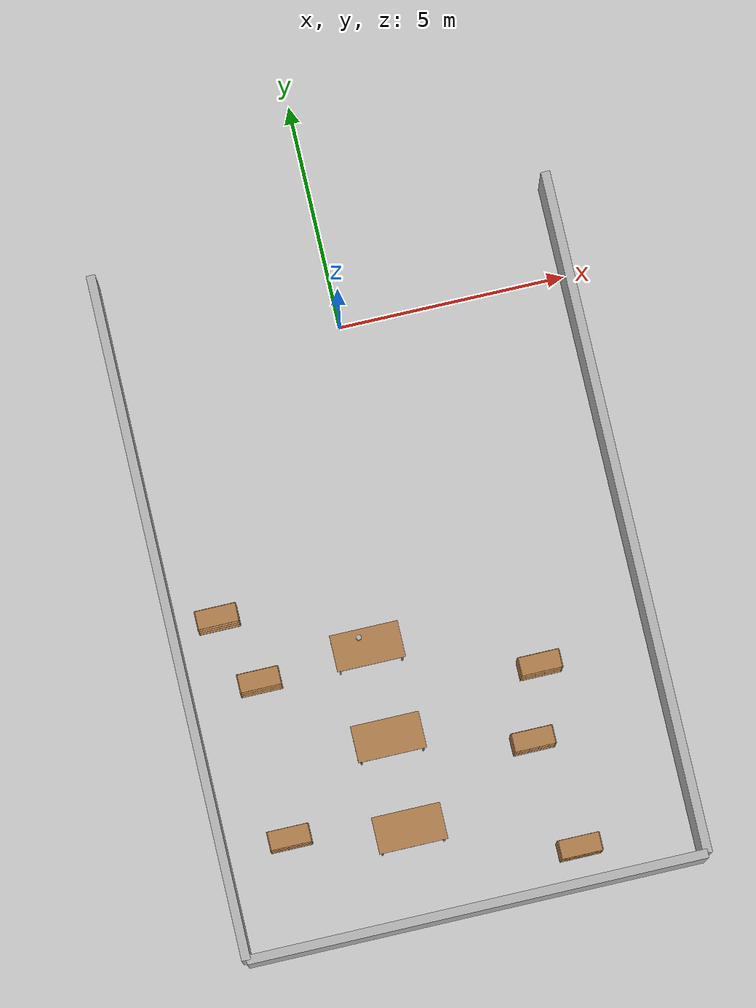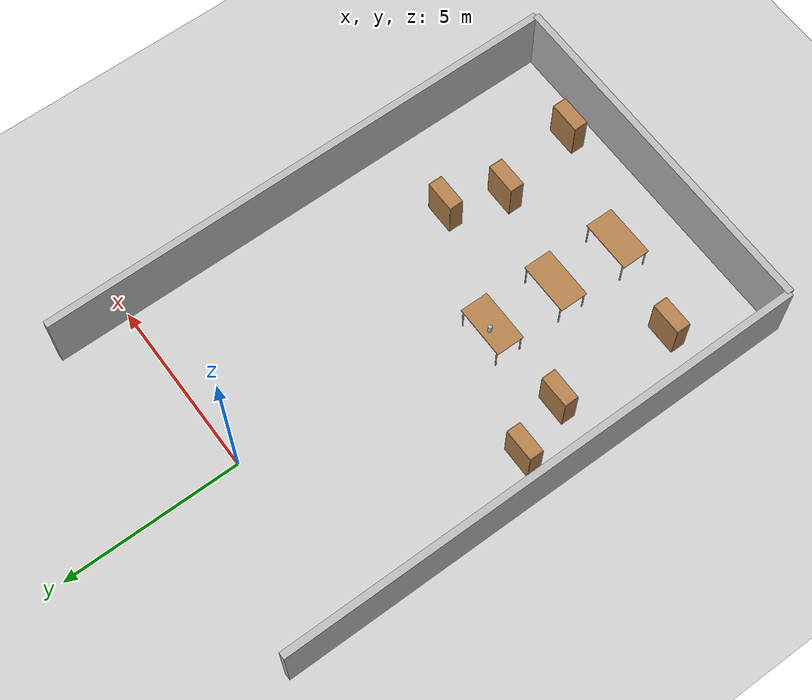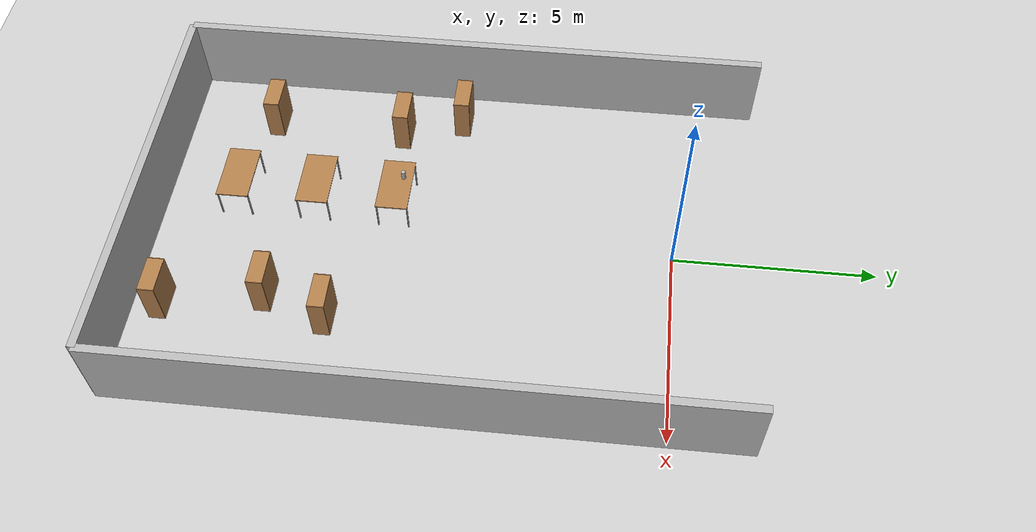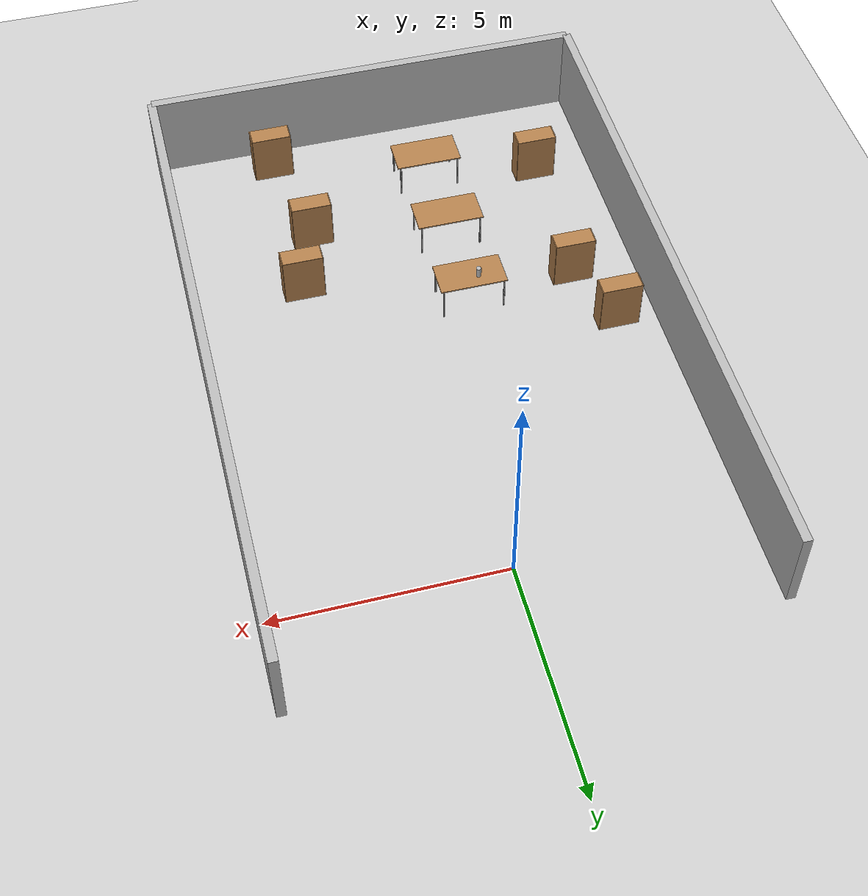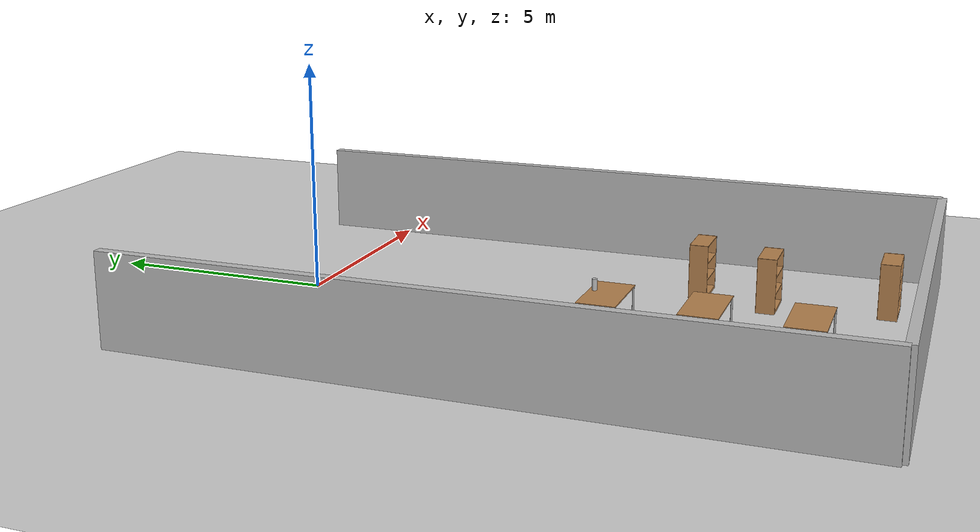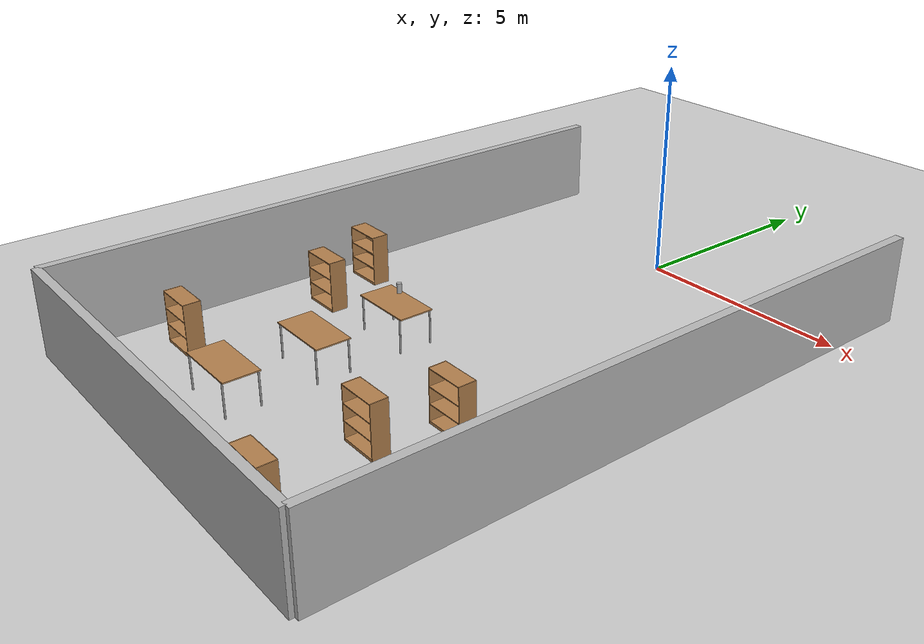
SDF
<sdf version="1.4">
 <world name="default">
  <model name="ground_plane">
   <static>1</static>
   <link name="link">
    <collision name="collision">
     <geometry>
      <plane><normal>0.000000 0.000000 1.000000</normal><size>100.000000 100.000000</size></plane>
     </geometry>
     <surface><friction><ode><mu>100.000000</mu><mu2>50.000000</mu2></ode></friction></surface>
    </collision>
    <visual name="visual">
     <cast_shadows>0</cast_shadows>
     <geometry>
      <plane><normal>0.000000 0.000000 1.000000</normal><size>100.000000 100.000000</size></plane>
     </geometry>
     <material>
      <script><uri>file://media/materials/scripts/gazebo.material</uri><name>Gazebo/Grey</name></script>
     </material>
    </visual>
    <velocity_decay><linear>0.000000</linear><angular>0.000000</angular></velocity_decay>
   </link>
  </model>
  <model name="wall_1_model">
   <pose>0.0 -13.0 1.0 0.0 0.0 0.0</pose>
   <static>1</static>
   <link name="wall_1_body">
    <inertial>
     <mass>1.000000</mass>
     <inertia>
      <ixx>1.000000</ixx>
      <ixy>0.000000</ixy>
      <ixz>0.000000</ixz>
      <iyy>1.000000</iyy>
      <iyz>0.000000</iyz>
      <izz>1.000000</izz>
     </inertia>
    </inertial>
    <collision name="collision">
     <geometry><box><size>10.000000 0.200000 2.000000</size></box></geometry>
    </collision>
    <visual name="visual"><geometry><box><size>10.000000 0.200000 2.000000</size></box></geometry></visual>
    <velocity_decay><linear>0.000000</linear><angular>0.000000</angular></velocity_decay>
   </link>
  </model>
  <model name="wall_3_model">
   <pose>-5.0 -5.5 1.0 0.0 0.0 0.0</pose>
   <static>1</static>
   <link name="wall_3_body">
    <inertial>
     <mass>1.000000</mass>
     <inertia>
      <ixx>1.000000</ixx>
      <ixy>0.000000</ixy>
      <ixz>0.000000</ixz>
      <iyy>1.000000</iyy>
      <iyz>0.000000</iyz>
      <izz>1.000000</izz>
     </inertia>
    </inertial>
    <collision name="collision">
     <geometry><box><size>0.200000 15.000000 2.000000</size></box></geometry>
    </collision>
    <visual name="visual"><geometry><box><size>0.200000 15.000000 2.000000</size></box></geometry></visual>
    <velocity_decay><linear>0.000000</linear><angular>0.000000</angular></velocity_decay>
   </link>
  </model>
  <model name="wall_4_model">
   <pose>5.0 -5.5 1.0 0.0 0.0 0.0</pose>
   <static>1</static>
   <link name="wall_4_body">
    <inertial>
     <mass>1.000000</mass>
     <inertia>
      <ixx>1.000000</ixx>
      <ixy>0.000000</ixy>
      <ixz>0.000000</ixz>
      <iyy>1.000000</iyy>
      <iyz>0.000000</iyz>
      <izz>1.000000</izz>
     </inertia>
    </inertial>
    <collision name="collision">
     <geometry><box><size>0.200000 15.000000 2.000000</size></box></geometry>
    </collision>
    <visual name="visual"><geometry><box><size>0.200000 15.000000 2.000000</size></box></geometry></visual>
    <velocity_decay><linear>0.000000</linear><angular>0.000000</angular></velocity_decay>
   </link>
  </model>
  <model name="bookshelf">
   <static>0</static>
   <link name="link">
    <inertial><mass>1.000000</mass></inertial>
    <collision name="back">
     <pose>0.000000 0.005000 0.600000 0.000000 0.000000 0.000000</pose>
     <geometry><box><size>0.900000 0.010000 1.200000</size></box></geometry>
    </collision>
    <visual name="visual1">
     <pose>0.000000 0.005000 0.600000 0.000000 0.000000 0.000000</pose>
     <geometry><box><size>0.900000 0.010000 1.200000</size></box></geometry>
     <material>
      <script><uri>file://media/materials/scripts/gazebo.material</uri><name>Gazebo/Wood</name></script>
     </material>
    </visual>
    <collision name="left_side">
     <pose>0.450000 -0.195000 0.600000 0.000000 0.000000 0.000000</pose>
     <geometry><box><size>0.020000 0.400000 1.200000</size></box></geometry>
    </collision>
    <visual name="visual2">
     <pose>0.450000 -0.195000 0.600000 0.000000 0.000000 0.000000</pose>
     <geometry><box><size>0.020000 0.400000 1.200000</size></box></geometry>
     <material>
      <script><uri>file://media/materials/scripts/gazebo.material</uri><name>Gazebo/Wood</name></script>
     </material>
    </visual>
    <collision name="right_side">
     <pose>-0.450000 -0.195000 0.600000 0.000000 0.000000 0.000000</pose>
     <geometry><box><size>0.020000 0.400000 1.200000</size></box></geometry>
    </collision>
    <visual name="visual3">
     <pose>-0.450000 -0.195000 0.600000 0.000000 0.000000 0.000000</pose>
     <geometry><box><size>0.020000 0.400000 1.200000</size></box></geometry>
     <material>
      <script><uri>file://media/materials/scripts/gazebo.material</uri><name>Gazebo/Wood</name></script>
     </material>
    </visual>
    <collision name="bottom">
     <pose>0.000000 -0.195000 0.030000 0.000000 0.000000 0.000000</pose>
     <geometry><box><size>0.880000 0.400000 0.060000</size></box></geometry>
    </collision>
    <visual name="visual4">
     <pose>0.000000 -0.195000 0.030000 0.000000 0.000000 0.000000</pose>
     <geometry><box><size>0.880000 0.400000 0.060000</size></box></geometry>
     <material>
      <script><uri>file://media/materials/scripts/gazebo.material</uri><name>Gazebo/Wood</name></script>
     </material>
    </visual>
    <collision name="top">
     <pose>0.000000 -0.195000 1.190000 0.000000 0.000000 0.000000</pose>
     <geometry><box><size>0.880000 0.400000 0.020000</size></box></geometry>
    </collision>
    <visual name="visual5">
     <pose>0.000000 -0.195000 1.190000 0.000000 0.000000 0.000000</pose>
     <geometry><box><size>0.880000 0.400000 0.020000</size></box></geometry>
     <material>
      <script><uri>file://media/materials/scripts/gazebo.material</uri><name>Gazebo/Wood</name></script>
     </material>
    </visual>
    <collision name="low_shelf">
     <pose>0.000000 -0.195000 0.430000 0.000000 0.000000 0.000000</pose>
     <geometry><box><size>0.880000 0.400000 0.020000</size></box></geometry>
    </collision>
    <visual name="visual6">
     <pose>0.000000 -0.195000 0.430000 0.000000 0.000000 0.000000</pose>
     <geometry><box><size>0.880000 0.400000 0.020000</size></box></geometry>
     <material>
      <script><uri>file://media/materials/scripts/gazebo.material</uri><name>Gazebo/Wood</name></script>
     </material>
    </visual>
    <collision name="high_shelf">
     <pose>0.000000 -0.195000 0.800000 0.000000 0.000000 0.000000</pose>
     <geometry><box><size>0.880000 0.400000 0.020000</size></box></geometry>
    </collision>
    <visual name="visual7">
     <pose>0.000000 -0.195000 0.800000 0.000000 0.000000 0.000000</pose>
     <geometry><box><size>0.880000 0.400000 0.020000</size></box></geometry>
     <material>
      <script><uri>file://media/materials/scripts/gazebo.material</uri><name>Gazebo/Wood</name></script>
     </material>
    </visual>
    <velocity_decay><linear>0.000000</linear><angular>0.000000</angular></velocity_decay>
   </link>
   <pose>2.0 -9.55401 0.0 0.0 0.0 0.0</pose>
  </model>
  <model name="table">
   <static>0</static>
   <link name="link">
    <collision name="surface">
     <pose>0.000000 0.000000 0.900000 0.000000 0.000000 0.000000</pose>
     <geometry><box><size>1.500000 0.800000 0.030000</size></box></geometry>
    </collision>
    <visual name="visual1">
     <pose>0.000000 0.000000 0.900000 0.000000 0.000000 0.000000</pose>
     <geometry><box><size>1.500000 0.800000 0.030000</size></box></geometry>
     <material>
      <script><uri>file://media/materials/scripts/gazebo.material</uri><name>Gazebo/Wood</name></script>
     </material>
    </visual>
    <collision name="front_left_leg">
     <pose>0.680000 0.380000 0.500000 0.000000 0.000000 0.000000</pose>
     <geometry><cylinder><radius>0.020000</radius><length>0.800000</length></cylinder></geometry>
    </collision>
    <visual name="front_left_leg">
     <pose>0.680000 0.380000 0.500000 0.000000 0.000000 0.000000</pose>
     <geometry><cylinder><radius>0.020000</radius><length>0.800000</length></cylinder></geometry>
     <material>
      <script><uri>file://media/materials/scripts/gazebo.material</uri><name>Gazebo/Grey</name></script>
     </material>
    </visual>
    <collision name="front_right_leg">
     <pose>0.680000 -0.380000 0.500000 0.000000 0.000000 0.000000</pose>
     <geometry><cylinder><radius>0.020000</radius><length>0.800000</length></cylinder></geometry>
    </collision>
    <visual name="front_right_leg">
     <pose>0.680000 -0.380000 0.500000 0.000000 0.000000 0.000000</pose>
     <geometry><cylinder><radius>0.020000</radius><length>0.800000</length></cylinder></geometry>
     <material>
      <script><uri>file://media/materials/scripts/gazebo.material</uri><name>Gazebo/Grey</name></script>
     </material>
    </visual>
    <collision name="back_right_leg">
     <pose>-0.680000 -0.380000 0.500000 0.000000 0.000000 0.000000</pose>
     <geometry><cylinder><radius>0.020000</radius><length>0.800000</length></cylinder></geometry>
    </collision>
    <visual name="back_right_leg">
     <pose>-0.680000 -0.380000 0.500000 0.000000 0.000000 0.000000</pose>
     <geometry><cylinder><radius>0.020000</radius><length>0.800000</length></cylinder></geometry>
     <material>
      <script><uri>file://media/materials/scripts/gazebo.material</uri><name>Gazebo/Grey</name></script>
     </material>
    </visual>
    <collision name="back_left_leg">
     <pose>-0.680000 0.380000 0.500000 0.000000 0.000000 0.000000</pose>
     <geometry><cylinder><radius>0.020000</radius><length>0.800000</length></cylinder></geometry>
    </collision>
    <visual name="back_left_leg">
     <pose>-0.680000 0.380000 0.500000 0.000000 0.000000 0.000000</pose>
     <geometry><cylinder><radius>0.020000</radius><length>0.800000</length></cylinder></geometry>
     <material>
      <script><uri>file://media/materials/scripts/gazebo.material</uri><name>Gazebo/Grey</name></script>
     </material>
    </visual>
    <velocity_decay><linear>0.000000</linear><angular>0.000000</angular></velocity_decay>
   </link>
   <pose>-1.0 -9.0 0.0 0.0 0.0 0.0</pose>
  </model>
  <model name="bookshelf_2">
   <static>0</static>
   <link name="link">
    <inertial><mass>1.000000</mass></inertial>
    <collision name="back">
     <pose>0.000000 0.005000 0.600000 0.000000 0.000000 0.000000</pose>
     <geometry><box><size>0.900000 0.010000 1.200000</size></box></geometry>
    </collision>
    <visual name="visual1">
     <pose>0.000000 0.005000 0.600000 0.000000 0.000000 0.000000</pose>
     <geometry><box><size>0.900000 0.010000 1.200000</size></box></geometry>
     <material>
      <script><uri>file://media/materials/scripts/gazebo.material</uri><name>Gazebo/Wood</name></script>
     </material>
    </visual>
    <collision name="left_side">
     <pose>0.450000 -0.195000 0.600000 0.000000 0.000000 0.000000</pose>
     <geometry><box><size>0.020000 0.400000 1.200000</size></box></geometry>
    </collision>
    <visual name="visual2">
     <pose>0.450000 -0.195000 0.600000 0.000000 0.000000 0.000000</pose>
     <geometry><box><size>0.020000 0.400000 1.200000</size></box></geometry>
     <material>
      <script><uri>file://media/materials/scripts/gazebo.material</uri><name>Gazebo/Wood</name></script>
     </material>
    </visual>
    <collision name="right_side">
     <pose>-0.450000 -0.195000 0.600000 0.000000 0.000000 0.000000</pose>
     <geometry><box><size>0.020000 0.400000 1.200000</size></box></geometry>
    </collision>
    <visual name="visual3">
     <pose>-0.450000 -0.195000 0.600000 0.000000 0.000000 0.000000</pose>
     <geometry><box><size>0.020000 0.400000 1.200000</size></box></geometry>
     <material>
      <script><uri>file://media/materials/scripts/gazebo.material</uri><name>Gazebo/Wood</name></script>
     </material>
    </visual>
    <collision name="bottom">
     <pose>0.000000 -0.195000 0.030000 0.000000 0.000000 0.000000</pose>
     <geometry><box><size>0.880000 0.400000 0.060000</size></box></geometry>
    </collision>
    <visual name="visual4">
     <pose>0.000000 -0.195000 0.030000 0.000000 0.000000 0.000000</pose>
     <geometry><box><size>0.880000 0.400000 0.060000</size></box></geometry>
     <material>
      <script><uri>file://media/materials/scripts/gazebo.material</uri><name>Gazebo/Wood</name></script>
     </material>
    </visual>
    <collision name="top">
     <pose>0.000000 -0.195000 1.190000 0.000000 0.000000 0.000000</pose>
     <geometry><box><size>0.880000 0.400000 0.020000</size></box></geometry>
    </collision>
    <visual name="visual5">
     <pose>0.000000 -0.195000 1.190000 0.000000 0.000000 0.000000</pose>
     <geometry><box><size>0.880000 0.400000 0.020000</size></box></geometry>
     <material>
      <script><uri>file://media/materials/scripts/gazebo.material</uri><name>Gazebo/Wood</name></script>
     </material>
    </visual>
    <collision name="low_shelf">
     <pose>0.000000 -0.195000 0.430000 0.000000 0.000000 0.000000</pose>
     <geometry><box><size>0.880000 0.400000 0.020000</size></box></geometry>
    </collision>
    <visual name="visual6">
     <pose>0.000000 -0.195000 0.430000 0.000000 0.000000 0.000000</pose>
     <geometry><box><size>0.880000 0.400000 0.020000</size></box></geometry>
     <material>
      <script><uri>file://media/materials/scripts/gazebo.material</uri><name>Gazebo/Wood</name></script>
     </material>
    </visual>
    <collision name="high_shelf">
     <pose>0.000000 -0.195000 0.800000 0.000000 0.000000 0.000000</pose>
     <geometry><box><size>0.880000 0.400000 0.020000</size></box></geometry>
    </collision>
    <visual name="visual7">
     <pose>0.000000 -0.195000 0.800000 0.000000 0.000000 0.000000</pose>
     <geometry><box><size>0.880000 0.400000 0.020000</size></box></geometry>
     <material>
      <script><uri>file://media/materials/scripts/gazebo.material</uri><name>Gazebo/Wood</name></script>
     </material>
    </visual>
    <velocity_decay><linear>0.000000</linear><angular>0.000000</angular></velocity_decay>
   </link>
   <pose>-3.41849 -7.0 0.0 0.0 0.0 0.0</pose>
  </model>
  <model name="table_0">
   <static>0</static>
   <link name="link">
    <collision name="surface">
     <pose>0.000000 0.000000 0.900000 0.000000 0.000000 0.000000</pose>
     <geometry><box><size>1.500000 0.800000 0.030000</size></box></geometry>
    </collision>
    <visual name="visual1">
     <pose>0.000000 0.000000 0.900000 0.000000 0.000000 0.000000</pose>
     <geometry><box><size>1.500000 0.800000 0.030000</size></box></geometry>
     <material>
      <script><uri>file://media/materials/scripts/gazebo.material</uri><name>Gazebo/Wood</name></script>
     </material>
    </visual>
    <collision name="front_left_leg">
     <pose>0.680000 0.380000 0.500000 0.000000 0.000000 0.000000</pose>
     <geometry><cylinder><radius>0.020000</radius><length>0.800000</length></cylinder></geometry>
    </collision>
    <visual name="front_left_leg">
     <pose>0.680000 0.380000 0.500000 0.000000 0.000000 0.000000</pose>
     <geometry><cylinder><radius>0.020000</radius><length>0.800000</length></cylinder></geometry>
     <material>
      <script><uri>file://media/materials/scripts/gazebo.material</uri><name>Gazebo/Grey</name></script>
     </material>
    </visual>
    <collision name="front_right_leg">
     <pose>0.680000 -0.380000 0.500000 0.000000 0.000000 0.000000</pose>
     <geometry><cylinder><radius>0.020000</radius><length>0.800000</length></cylinder></geometry>
    </collision>
    <visual name="front_right_leg">
     <pose>0.680000 -0.380000 0.500000 0.000000 0.000000 0.000000</pose>
     <geometry><cylinder><radius>0.020000</radius><length>0.800000</length></cylinder></geometry>
     <material>
      <script><uri>file://media/materials/scripts/gazebo.material</uri><name>Gazebo/Grey</name></script>
     </material>
    </visual>
    <collision name="back_right_leg">
     <pose>-0.680000 -0.380000 0.500000 0.000000 0.000000 0.000000</pose>
     <geometry><cylinder><radius>0.020000</radius><length>0.800000</length></cylinder></geometry>
    </collision>
    <visual name="back_right_leg">
     <pose>-0.680000 -0.380000 0.500000 0.000000 0.000000 0.000000</pose>
     <geometry><cylinder><radius>0.020000</radius><length>0.800000</length></cylinder></geometry>
     <material>
      <script><uri>file://media/materials/scripts/gazebo.material</uri><name>Gazebo/Grey</name></script>
     </material>
    </visual>
    <collision name="back_left_leg">
     <pose>-0.680000 0.380000 0.500000 0.000000 0.000000 0.000000</pose>
     <geometry><cylinder><radius>0.020000</radius><length>0.800000</length></cylinder></geometry>
    </collision>
    <visual name="back_left_leg">
     <pose>-0.680000 0.380000 0.500000 0.000000 0.000000 0.000000</pose>
     <geometry><cylinder><radius>0.020000</radius><length>0.800000</length></cylinder></geometry>
     <material>
      <script><uri>file://media/materials/scripts/gazebo.material</uri><name>Gazebo/Grey</name></script>
     </material>
    </visual>
    <velocity_decay><linear>0.000000</linear><angular>0.000000</angular></velocity_decay>
   </link>
   <pose>-1.0 -7.0 0.0 0.0 0.0 0.0</pose>
  </model>
  <model name="table_1">
   <static>0</static>
   <link name="link">
    <collision name="surface">
     <pose>0.000000 0.000000 0.900000 0.000000 0.000000 0.000000</pose>
     <geometry><box><size>1.500000 0.800000 0.030000</size></box></geometry>
    </collision>
    <visual name="visual1">
     <pose>0.000000 0.000000 0.900000 0.000000 0.000000 0.000000</pose>
     <geometry><box><size>1.500000 0.800000 0.030000</size></box></geometry>
     <material>
      <script><uri>file://media/materials/scripts/gazebo.material</uri><name>Gazebo/Wood</name></script>
     </material>
    </visual>
    <collision name="front_left_leg">
     <pose>0.680000 0.380000 0.500000 0.000000 0.000000 0.000000</pose>
     <geometry><cylinder><radius>0.020000</radius><length>0.800000</length></cylinder></geometry>
    </collision>
    <visual name="front_left_leg">
     <pose>0.680000 0.380000 0.500000 0.000000 0.000000 0.000000</pose>
     <geometry><cylinder><radius>0.020000</radius><length>0.800000</length></cylinder></geometry>
     <material>
      <script><uri>file://media/materials/scripts/gazebo.material</uri><name>Gazebo/Grey</name></script>
     </material>
    </visual>
    <collision name="front_right_leg">
     <pose>0.680000 -0.380000 0.500000 0.000000 0.000000 0.000000</pose>
     <geometry><cylinder><radius>0.020000</radius><length>0.800000</length></cylinder></geometry>
    </collision>
    <visual name="front_right_leg">
     <pose>0.680000 -0.380000 0.500000 0.000000 0.000000 0.000000</pose>
     <geometry><cylinder><radius>0.020000</radius><length>0.800000</length></cylinder></geometry>
     <material>
      <script><uri>file://media/materials/scripts/gazebo.material</uri><name>Gazebo/Grey</name></script>
     </material>
    </visual>
    <collision name="back_right_leg">
     <pose>-0.680000 -0.380000 0.500000 0.000000 0.000000 0.000000</pose>
     <geometry><cylinder><radius>0.020000</radius><length>0.800000</length></cylinder></geometry>
    </collision>
    <visual name="back_right_leg">
     <pose>-0.680000 -0.380000 0.500000 0.000000 0.000000 0.000000</pose>
     <geometry><cylinder><radius>0.020000</radius><length>0.800000</length></cylinder></geometry>
     <material>
      <script><uri>file://media/materials/scripts/gazebo.material</uri><name>Gazebo/Grey</name></script>
     </material>
    </visual>
    <collision name="back_left_leg">
     <pose>-0.680000 0.380000 0.500000 0.000000 0.000000 0.000000</pose>
     <geometry><cylinder><radius>0.020000</radius><length>0.800000</length></cylinder></geometry>
    </collision>
    <visual name="back_left_leg">
     <pose>-0.680000 0.380000 0.500000 0.000000 0.000000 0.000000</pose>
     <geometry><cylinder><radius>0.020000</radius><length>0.800000</length></cylinder></geometry>
     <material>
      <script><uri>file://media/materials/scripts/gazebo.material</uri><name>Gazebo/Grey</name></script>
     </material>
    </visual>
    <velocity_decay><linear>0.000000</linear><angular>0.000000</angular></velocity_decay>
   </link>
   <pose>-1.0 -11.0 0.0 0.0 0.0 0.0</pose>
  </model>
  <model name="bookshelf_3">
   <static>0</static>
   <link name="link">
    <inertial><mass>1.000000</mass></inertial>
    <collision name="back">
     <pose>0.000000 0.005000 0.600000 0.000000 0.000000 0.000000</pose>
     <geometry><box><size>0.900000 0.010000 1.200000</size></box></geometry>
    </collision>
    <visual name="visual1">
     <pose>0.000000 0.005000 0.600000 0.000000 0.000000 0.000000</pose>
     <geometry><box><size>0.900000 0.010000 1.200000</size></box></geometry>
     <material>
      <script><uri>file://media/materials/scripts/gazebo.material</uri><name>Gazebo/Wood</name></script>
     </material>
    </visual>
    <collision name="left_side">
     <pose>0.450000 -0.195000 0.600000 0.000000 0.000000 0.000000</pose>
     <geometry><box><size>0.020000 0.400000 1.200000</size></box></geometry>
    </collision>
    <visual name="visual2">
     <pose>0.450000 -0.195000 0.600000 0.000000 0.000000 0.000000</pose>
     <geometry><box><size>0.020000 0.400000 1.200000</size></box></geometry>
     <material>
      <script><uri>file://media/materials/scripts/gazebo.material</uri><name>Gazebo/Wood</name></script>
     </material>
    </visual>
    <collision name="right_side">
     <pose>-0.450000 -0.195000 0.600000 0.000000 0.000000 0.000000</pose>
     <geometry><box><size>0.020000 0.400000 1.200000</size></box></geometry>
    </collision>
    <visual name="visual3">
     <pose>-0.450000 -0.195000 0.600000 0.000000 0.000000 0.000000</pose>
     <geometry><box><size>0.020000 0.400000 1.200000</size></box></geometry>
     <material>
      <script><uri>file://media/materials/scripts/gazebo.material</uri><name>Gazebo/Wood</name></script>
     </material>
    </visual>
    <collision name="bottom">
     <pose>0.000000 -0.195000 0.030000 0.000000 0.000000 0.000000</pose>
     <geometry><box><size>0.880000 0.400000 0.060000</size></box></geometry>
    </collision>
    <visual name="visual4">
     <pose>0.000000 -0.195000 0.030000 0.000000 0.000000 0.000000</pose>
     <geometry><box><size>0.880000 0.400000 0.060000</size></box></geometry>
     <material>
      <script><uri>file://media/materials/scripts/gazebo.material</uri><name>Gazebo/Wood</name></script>
     </material>
    </visual>
    <collision name="top">
     <pose>0.000000 -0.195000 1.190000 0.000000 0.000000 0.000000</pose>
     <geometry><box><size>0.880000 0.400000 0.020000</size></box></geometry>
    </collision>
    <visual name="visual5">
     <pose>0.000000 -0.195000 1.190000 0.000000 0.000000 0.000000</pose>
     <geometry><box><size>0.880000 0.400000 0.020000</size></box></geometry>
     <material>
      <script><uri>file://media/materials/scripts/gazebo.material</uri><name>Gazebo/Wood</name></script>
     </material>
    </visual>
    <collision name="low_shelf">
     <pose>0.000000 -0.195000 0.430000 0.000000 0.000000 0.000000</pose>
     <geometry><box><size>0.880000 0.400000 0.020000</size></box></geometry>
    </collision>
    <visual name="visual6">
     <pose>0.000000 -0.195000 0.430000 0.000000 0.000000 0.000000</pose>
     <geometry><box><size>0.880000 0.400000 0.020000</size></box></geometry>
     <material>
      <script><uri>file://media/materials/scripts/gazebo.material</uri><name>Gazebo/Wood</name></script>
     </material>
    </visual>
    <collision name="high_shelf">
     <pose>0.000000 -0.195000 0.800000 0.000000 0.000000 0.000000</pose>
     <geometry><box><size>0.880000 0.400000 0.020000</size></box></geometry>
    </collision>
    <visual name="visual7">
     <pose>0.000000 -0.195000 0.800000 0.000000 0.000000 0.000000</pose>
     <geometry><box><size>0.880000 0.400000 0.020000</size></box></geometry>
     <material>
      <script><uri>file://media/materials/scripts/gazebo.material</uri><name>Gazebo/Wood</name></script>
     </material>
    </visual>
    <velocity_decay><linear>0.000000</linear><angular>0.000000</angular></velocity_decay>
   </link>
   <pose>2.45055 -12.0 0.0 0.0 0.0 0.0</pose>
  </model>
  <model name="bookshelf_4">
   <static>0</static>
   <link name="link">
    <inertial><mass>1.000000</mass></inertial>
    <collision name="back">
     <pose>0.000000 0.005000 0.600000 0.000000 0.000000 0.000000</pose>
     <geometry><box><size>0.900000 0.010000 1.200000</size></box></geometry>
    </collision>
    <visual name="visual1">
     <pose>0.000000 0.005000 0.600000 0.000000 0.000000 0.000000</pose>
     <geometry><box><size>0.900000 0.010000 1.200000</size></box></geometry>
     <material>
      <script><uri>file://media/materials/scripts/gazebo.material</uri><name>Gazebo/Wood</name></script>
     </material>
    </visual>
    <collision name="left_side">
     <pose>0.450000 -0.195000 0.600000 0.000000 0.000000 0.000000</pose>
     <geometry><box><size>0.020000 0.400000 1.200000</size></box></geometry>
    </collision>
    <visual name="visual2">
     <pose>0.450000 -0.195000 0.600000 0.000000 0.000000 0.000000</pose>
     <geometry><box><size>0.020000 0.400000 1.200000</size></box></geometry>
     <material>
      <script><uri>file://media/materials/scripts/gazebo.material</uri><name>Gazebo/Wood</name></script>
     </material>
    </visual>
    <collision name="right_side">
     <pose>-0.450000 -0.195000 0.600000 0.000000 0.000000 0.000000</pose>
     <geometry><box><size>0.020000 0.400000 1.200000</size></box></geometry>
    </collision>
    <visual name="visual3">
     <pose>-0.450000 -0.195000 0.600000 0.000000 0.000000 0.000000</pose>
     <geometry><box><size>0.020000 0.400000 1.200000</size></box></geometry>
     <material>
      <script><uri>file://media/materials/scripts/gazebo.material</uri><name>Gazebo/Wood</name></script>
     </material>
    </visual>
    <collision name="bottom">
     <pose>0.000000 -0.195000 0.030000 0.000000 0.000000 0.000000</pose>
     <geometry><box><size>0.880000 0.400000 0.060000</size></box></geometry>
    </collision>
    <visual name="visual4">
     <pose>0.000000 -0.195000 0.030000 0.000000 0.000000 0.000000</pose>
     <geometry><box><size>0.880000 0.400000 0.060000</size></box></geometry>
     <material>
      <script><uri>file://media/materials/scripts/gazebo.material</uri><name>Gazebo/Wood</name></script>
     </material>
    </visual>
    <collision name="top">
     <pose>0.000000 -0.195000 1.190000 0.000000 0.000000 0.000000</pose>
     <geometry><box><size>0.880000 0.400000 0.020000</size></box></geometry>
    </collision>
    <visual name="visual5">
     <pose>0.000000 -0.195000 1.190000 0.000000 0.000000 0.000000</pose>
     <geometry><box><size>0.880000 0.400000 0.020000</size></box></geometry>
     <material>
      <script><uri>file://media/materials/scripts/gazebo.material</uri><name>Gazebo/Wood</name></script>
     </material>
    </visual>
    <collision name="low_shelf">
     <pose>0.000000 -0.195000 0.430000 0.000000 0.000000 0.000000</pose>
     <geometry><box><size>0.880000 0.400000 0.020000</size></box></geometry>
    </collision>
    <visual name="visual6">
     <pose>0.000000 -0.195000 0.430000 0.000000 0.000000 0.000000</pose>
     <geometry><box><size>0.880000 0.400000 0.020000</size></box></geometry>
     <material>
      <script><uri>file://media/materials/scripts/gazebo.material</uri><name>Gazebo/Wood</name></script>
     </material>
    </visual>
    <collision name="high_shelf">
     <pose>0.000000 -0.195000 0.800000 0.000000 0.000000 0.000000</pose>
     <geometry><box><size>0.880000 0.400000 0.020000</size></box></geometry>
    </collision>
    <visual name="visual7">
     <pose>0.000000 -0.195000 0.800000 0.000000 0.000000 0.000000</pose>
     <geometry><box><size>0.880000 0.400000 0.020000</size></box></geometry>
     <material>
      <script><uri>file://media/materials/scripts/gazebo.material</uri><name>Gazebo/Wood</name></script>
     </material>
    </visual>
    <velocity_decay><linear>0.000000</linear><angular>0.000000</angular></velocity_decay>
   </link>
   <pose>2.51316 -8.0 0.0 0.0 0.0 0.0</pose>
  </model>
  <model name="bookshelf_5">
   <static>0</static>
   <link name="link">
    <inertial><mass>1.000000</mass></inertial>
    <collision name="back">
     <pose>0.000000 0.005000 0.600000 0.000000 0.000000 0.000000</pose>
     <geometry><box><size>0.900000 0.010000 1.200000</size></box></geometry>
    </collision>
    <visual name="visual1">
     <pose>0.000000 0.005000 0.600000 0.000000 0.000000 0.000000</pose>
     <geometry><box><size>0.900000 0.010000 1.200000</size></box></geometry>
     <material>
      <script><uri>file://media/materials/scripts/gazebo.material</uri><name>Gazebo/Wood</name></script>
     </material>
    </visual>
    <collision name="left_side">
     <pose>0.450000 -0.195000 0.600000 0.000000 0.000000 0.000000</pose>
     <geometry><box><size>0.020000 0.400000 1.200000</size></box></geometry>
    </collision>
    <visual name="visual2">
     <pose>0.450000 -0.195000 0.600000 0.000000 0.000000 0.000000</pose>
     <geometry><box><size>0.020000 0.400000 1.200000</size></box></geometry>
     <material>
      <script><uri>file://media/materials/scripts/gazebo.material</uri><name>Gazebo/Wood</name></script>
     </material>
    </visual>
    <collision name="right_side">
     <pose>-0.450000 -0.195000 0.600000 0.000000 0.000000 0.000000</pose>
     <geometry><box><size>0.020000 0.400000 1.200000</size></box></geometry>
    </collision>
    <visual name="visual3">
     <pose>-0.450000 -0.195000 0.600000 0.000000 0.000000 0.000000</pose>
     <geometry><box><size>0.020000 0.400000 1.200000</size></box></geometry>
     <material>
      <script><uri>file://media/materials/scripts/gazebo.material</uri><name>Gazebo/Wood</name></script>
     </material>
    </visual>
    <collision name="bottom">
     <pose>0.000000 -0.195000 0.030000 0.000000 0.000000 0.000000</pose>
     <geometry><box><size>0.880000 0.400000 0.060000</size></box></geometry>
    </collision>
    <visual name="visual4">
     <pose>0.000000 -0.195000 0.030000 0.000000 0.000000 0.000000</pose>
     <geometry><box><size>0.880000 0.400000 0.060000</size></box></geometry>
     <material>
      <script><uri>file://media/materials/scripts/gazebo.material</uri><name>Gazebo/Wood</name></script>
     </material>
    </visual>
    <collision name="top">
     <pose>0.000000 -0.195000 1.190000 0.000000 0.000000 0.000000</pose>
     <geometry><box><size>0.880000 0.400000 0.020000</size></box></geometry>
    </collision>
    <visual name="visual5">
     <pose>0.000000 -0.195000 1.190000 0.000000 0.000000 0.000000</pose>
     <geometry><box><size>0.880000 0.400000 0.020000</size></box></geometry>
     <material>
      <script><uri>file://media/materials/scripts/gazebo.material</uri><name>Gazebo/Wood</name></script>
     </material>
    </visual>
    <collision name="low_shelf">
     <pose>0.000000 -0.195000 0.430000 0.000000 0.000000 0.000000</pose>
     <geometry><box><size>0.880000 0.400000 0.020000</size></box></geometry>
    </collision>
    <visual name="visual6">
     <pose>0.000000 -0.195000 0.430000 0.000000 0.000000 0.000000</pose>
     <geometry><box><size>0.880000 0.400000 0.020000</size></box></geometry>
     <material>
      <script><uri>file://media/materials/scripts/gazebo.material</uri><name>Gazebo/Wood</name></script>
     </material>
    </visual>
    <collision name="high_shelf">
     <pose>0.000000 -0.195000 0.800000 0.000000 0.000000 0.000000</pose>
     <geometry><box><size>0.880000 0.400000 0.020000</size></box></geometry>
    </collision>
    <visual name="visual7">
     <pose>0.000000 -0.195000 0.800000 0.000000 0.000000 0.000000</pose>
     <geometry><box><size>0.880000 0.400000 0.020000</size></box></geometry>
     <material>
      <script><uri>file://media/materials/scripts/gazebo.material</uri><name>Gazebo/Wood</name></script>
     </material>
    </visual>
    <velocity_decay><linear>0.000000</linear><angular>0.000000</angular></velocity_decay>
   </link>
   <pose>-3.53929 -10.42222 0.0 0.0 0.0 0.0</pose>
  </model>
  <model name="bookshelf_6">
   <static>0</static>
   <link name="link">
    <inertial><mass>1.000000</mass></inertial>
    <collision name="back">
     <pose>0.000000 0.005000 0.600000 0.000000 0.000000 0.000000</pose>
     <geometry><box><size>0.900000 0.010000 1.200000</size></box></geometry>
    </collision>
    <visual name="visual1">
     <pose>0.000000 0.005000 0.600000 0.000000 0.000000 0.000000</pose>
     <geometry><box><size>0.900000 0.010000 1.200000</size></box></geometry>
     <material>
      <script><uri>file://media/materials/scripts/gazebo.material</uri><name>Gazebo/Wood</name></script>
     </material>
    </visual>
    <collision name="left_side">
     <pose>0.450000 -0.195000 0.600000 0.000000 0.000000 0.000000</pose>
     <geometry><box><size>0.020000 0.400000 1.200000</size></box></geometry>
    </collision>
    <visual name="visual2">
     <pose>0.450000 -0.195000 0.600000 0.000000 0.000000 0.000000</pose>
     <geometry><box><size>0.020000 0.400000 1.200000</size></box></geometry>
     <material>
      <script><uri>file://media/materials/scripts/gazebo.material</uri><name>Gazebo/Wood</name></script>
     </material>
    </visual>
    <collision name="right_side">
     <pose>-0.450000 -0.195000 0.600000 0.000000 0.000000 0.000000</pose>
     <geometry><box><size>0.020000 0.400000 1.200000</size></box></geometry>
    </collision>
    <visual name="visual3">
     <pose>-0.450000 -0.195000 0.600000 0.000000 0.000000 0.000000</pose>
     <geometry><box><size>0.020000 0.400000 1.200000</size></box></geometry>
     <material>
      <script><uri>file://media/materials/scripts/gazebo.material</uri><name>Gazebo/Wood</name></script>
     </material>
    </visual>
    <collision name="bottom">
     <pose>0.000000 -0.195000 0.030000 0.000000 0.000000 0.000000</pose>
     <geometry><box><size>0.880000 0.400000 0.060000</size></box></geometry>
    </collision>
    <visual name="visual4">
     <pose>0.000000 -0.195000 0.030000 0.000000 0.000000 0.000000</pose>
     <geometry><box><size>0.880000 0.400000 0.060000</size></box></geometry>
     <material>
      <script><uri>file://media/materials/scripts/gazebo.material</uri><name>Gazebo/Wood</name></script>
     </material>
    </visual>
    <collision name="top">
     <pose>0.000000 -0.195000 1.190000 0.000000 0.000000 0.000000</pose>
     <geometry><box><size>0.880000 0.400000 0.020000</size></box></geometry>
    </collision>
    <visual name="visual5">
     <pose>0.000000 -0.195000 1.190000 0.000000 0.000000 0.000000</pose>
     <geometry><box><size>0.880000 0.400000 0.020000</size></box></geometry>
     <material>
      <script><uri>file://media/materials/scripts/gazebo.material</uri><name>Gazebo/Wood</name></script>
     </material>
    </visual>
    <collision name="low_shelf">
     <pose>0.000000 -0.195000 0.430000 0.000000 0.000000 0.000000</pose>
     <geometry><box><size>0.880000 0.400000 0.020000</size></box></geometry>
    </collision>
    <visual name="visual6">
     <pose>0.000000 -0.195000 0.430000 0.000000 0.000000 0.000000</pose>
     <geometry><box><size>0.880000 0.400000 0.020000</size></box></geometry>
     <material>
      <script><uri>file://media/materials/scripts/gazebo.material</uri><name>Gazebo/Wood</name></script>
     </material>
    </visual>
    <collision name="high_shelf">
     <pose>0.000000 -0.195000 0.800000 0.000000 0.000000 0.000000</pose>
     <geometry><box><size>0.880000 0.400000 0.020000</size></box></geometry>
    </collision>
    <visual name="visual7">
     <pose>0.000000 -0.195000 0.800000 0.000000 0.000000 0.000000</pose>
     <geometry><box><size>0.880000 0.400000 0.020000</size></box></geometry>
     <material>
      <script><uri>file://media/materials/scripts/gazebo.material</uri><name>Gazebo/Wood</name></script>
     </material>
    </visual>
    <velocity_decay><linear>0.000000</linear><angular>0.000000</angular></velocity_decay>
   </link>
   <pose>-4.0 -5.47465 0.0 0.0 0.0 0.0</pose>
  </model>
  <model name="beer">
   <link name="link">
    <pose>0 0 0.115 0 -0 0</pose>
    <inertial>
     <mass>0.39</mass>
     <inertia><ixx>0.00058</ixx><ixy>0</ixy><ixz>0</ixz><iyy>0.00058</iyy><iyz>0</iyz><izz>0.00019</izz></inertia>
    </inertial>
    <collision name="collision">
     <geometry><cylinder><radius>0.055</radius><length>0.23</length></cylinder></geometry>
    </collision>
    <visual name="visual">
     <geometry><cylinder><radius>0.055</radius><length>0.23</length></cylinder></geometry>
     <material>
      <script>
       <uri>model://beer/materials/scripts</uri>
       <uri>model://beer/materials/textures</uri>
       <name>Beer/Diffuse</name>
      </script>
     </material>
    </visual>
   </link>
   <pose>-1.142013 -6.80398 1.015 0 -0 0</pose>
  </model>
 </world>
</sdf>
